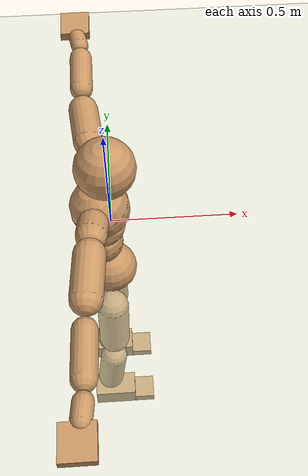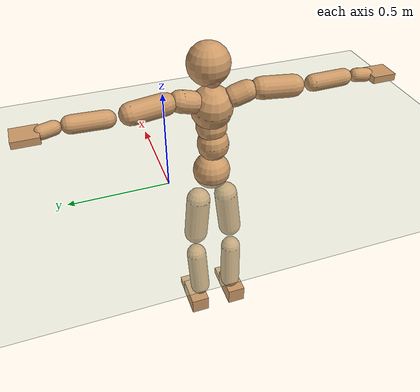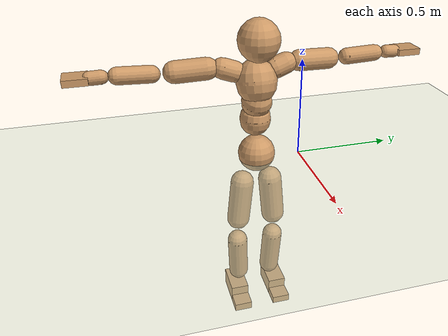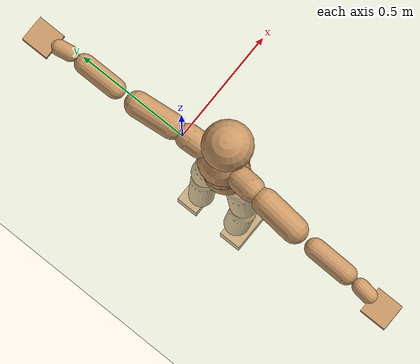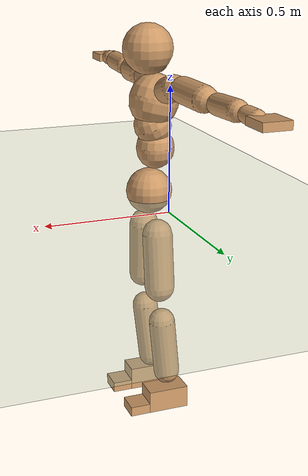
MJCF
<mujoco model="humanoid">
  <compiler coordinate="local"/>
  <default>
    <joint damping="0.0" armature="0.01" stiffness="0.0" limited="true"/>
    <geom conaffinity="1" condim="3" contype="7" margin="0.001" rgba="0.8 0.6 .4 1"/>
  </default>
  <asset>
    <texture type="skybox" builtin="gradient" rgb1=".4 .5 .6" rgb2="0 0 0" width="100" height="100"/>
    <texture builtin="flat" height="1278" mark="cross" markrgb="1 1 1" name="texgeom" random="0.01" rgb1="0.8 0.6 0.4" rgb2="0.8 0.6 0.4" type="cube" width="127"/>
    <texture builtin="checker" height="100" name="texplane" rgb1="0 0 0" rgb2="0.8 0.8 0.8" type="2d" width="100"/>
    <material name="MatPlane" reflectance="0.5" shininess="1" specular="1" texrepeat="60 60" texture="texplane"/>
    <material name="geom" texture="texgeom" texuniform="true"/>
  </asset>
  <worldbody>
    <light cutoff="100" diffuse="1 1 1" dir="-0 0 -1.3" directional="true" exponent="1" pos="0 0 1.3" specular=".1 .1 .1"/>
    <geom conaffinity="1" condim="3" name="floor" pos="0 0 0" rgba="0.8 0.9 0.8 1" size="100 100 .2" type="plane" material="MatPlane"/>
    <body name="Pelvis" pos="-0.0019 -0.2253 0.0285">
      <freejoint name="Pelvis"/>
      <geom type="sphere" contype="1" conaffinity="1" density="4629.6296296296305" size="0.0948" pos="0.0000 0.0000 0.0000" name="Pelvis"/>
      <body name="L_Hip" pos="-0.0067 0.0696 -0.092">
        <joint name="L_Hip_x" type="hinge" pos="0 0 0" axis="1 0 0" user="250 2.5 1 500 10 2" armature="0.01" range="-90.0000 90.0000" damping="0" stiffness="0"/>
        <joint name="L_Hip_y" type="hinge" pos="0 0 0" axis="0 1 0" user="250 2.5 1 500 10 2" armature="0.01" range="-90.0000 90.0000" damping="0" stiffness="0"/>
        <joint name="L_Hip_z" type="hinge" pos="0 0 0" axis="0 0 1" user="250 2.5 1 500 10 2" armature="0.01" range="-90.0000 90.0000" damping="0" stiffness="0"/>
        <geom type="capsule" contype="1" conaffinity="1" density="2040.816327" fromto="-0.0009 0.0070 -0.0757 -0.0035 0.0279 -0.3028" size="0.0618" name="L_Hip"/>
        <body name="L_Knee" pos="-0.0043 0.0349 -0.3785">
          <joint name="L_Knee_x" type="hinge" pos="0 0 0" axis="1 0 0" user="250 2.5 1 500 10 2" armature="0.01" range="-5.6250 5.6250" damping="0" stiffness="0"/>
          <joint name="L_Knee_y" type="hinge" pos="0 0 0" axis="0 1 0" user="250 2.5 1 500 10 2" armature="0.01" range="0.0000 180.0000" damping="0" stiffness="0"/>
          <joint name="L_Knee_z" type="hinge" pos="0 0 0" axis="0 0 1" user="250 2.5 1 500 10 2" armature="0.01" range="-5.6250 5.6250" damping="0" stiffness="0"/>
          <geom type="capsule" contype="1" conaffinity="1" density="1234.567901" fromto="-0.0088 -0.0028 -0.0804 -0.0352 -0.0111 -0.3218" size="0.0544" name="L_Knee"/>
          <body name="L_Ankle" pos="-0.044 -0.0139 -0.4022">
            <joint name="L_Ankle_x" type="hinge" pos="0 0 0" axis="1 0 0" user="150 2.5 1 500 10 2" armature="0.01" range="-45.0000 45.0000" damping="0" stiffness="0"/>
            <joint name="L_Ankle_y" type="hinge" pos="0 0 0" axis="0 1 0" user="150 2.5 1 500 10 2" armature="0.01" range="-90.0000 90.0000" damping="0" stiffness="0"/>
            <joint name="L_Ankle_z" type="hinge" pos="0 0 0" axis="0 0 1" user="150 2.5 1 500 10 2" armature="0.01" range="-45.0000 45.0000" damping="0" stiffness="0"/>
            <geom type="box" density="449.066911" pos="0.0244 0.0237 -0.0240" size="0.0857 0.0488 0.0468" quat="1.0000 0.0000 0.0000 0.0000" name="L_Ankle"/>
            <body name="L_Toe" pos="0.1204 0.0268 -0.0563">
              <joint name="L_Toe_x" type="hinge" pos="0 0 0" axis="1 0 0" user="150 1 1 500 1 1" armature="0.01" range="-180.0000 180.0000" damping="0" stiffness="0"/>
              <joint name="L_Toe_y" type="hinge" pos="0 0 0" axis="0 1 0" user="150 1 1 500 1 1" armature="0.01" range="-180.0000 180.0000" damping="0" stiffness="0"/>
              <joint name="L_Toe_z" type="hinge" pos="0 0 0" axis="0 0 1" user="150 1 1 500 1 1" armature="0.01" range="-180.0000 180.0000" damping="0" stiffness="0"/>
              <geom type="box" density="424.15414" pos="0.0251 -0.0031 0.0055" size="0.05 0.0481 0.0202" quat="1.0000 0.0000 0.0000 0.0000" name="L_Toe"/>
            </body>
          </body>
        </body>
      </body>
      <body name="R_Hip" pos="-0.0042 -0.0678 -0.0911">
        <joint name="R_Hip_x" type="hinge" pos="0 0 0" axis="1 0 0" user="250 2.5 1 500 10 2" armature="0.01" range="-90.0000 90.0000" damping="0" stiffness="0"/>
        <joint name="R_Hip_y" type="hinge" pos="0 0 0" axis="0 1 0" user="250 2.5 1 500 10 2" armature="0.01" range="-90.0000 90.0000" damping="0" stiffness="0"/>
        <joint name="R_Hip_z" type="hinge" pos="0 0 0" axis="0 0 1" user="250 2.5 1 500 10 2" armature="0.01" range="-90.0000 90.0000" damping="0" stiffness="0"/>
        <geom type="capsule" contype="1" conaffinity="1" density="2040.816327" fromto="-0.0018 -0.0078 -0.0772 -0.0071 -0.0311 -0.3088" size="0.0608" name="R_Hip"/>
        <body name="R_Knee" pos="-0.0089 -0.0388 -0.3861">
          <joint name="R_Knee_x" type="hinge" pos="0 0 0" axis="1 0 0" user="250 2.5 1 500 10 2" armature="0.01" range="-5.6250 5.6250" damping="0" stiffness="0"/>
          <joint name="R_Knee_y" type="hinge" pos="0 0 0" axis="0 1 0" user="250 2.5 1 500 10 2" armature="0.01" range="0.0000 180.0000" damping="0" stiffness="0"/>
          <joint name="R_Knee_z" type="hinge" pos="0 0 0" axis="0 0 1" user="250 2.5 1 500 10 2" armature="0.01" range="-5.6250 5.6250" damping="0" stiffness="0"/>
          <geom type="capsule" contype="1" conaffinity="1" density="1234.567901" fromto="-0.0085 0.0032 -0.0806 -0.0341 0.0129 -0.3222" size="0.0545" name="R_Knee"/>
          <body name="R_Ankle" pos="-0.0426 0.0161 -0.4028">
            <joint name="R_Ankle_x" type="hinge" pos="0 0 0" axis="1 0 0" user="150 1 1 500 10 2" armature="0.01" range="-45.0000 45.0000" damping="0" stiffness="0"/>
            <joint name="R_Ankle_y" type="hinge" pos="0 0 0" axis="0 1 0" user="150 1 1 500 10 2" armature="0.01" range="-90.0000 90.0000" damping="0" stiffness="0"/>
            <joint name="R_Ankle_z" type="hinge" pos="0 0 0" axis="0 0 1" user="150 1 1 500 10 2" armature="0.01" range="-45.0000 45.0000" damping="0" stiffness="0"/>
            <geom type="box" density="435.148305" pos="0.0259 -0.0217 -0.0176" size="0.0873 0.0487 0.0483" quat="1.0000 0.0000 0.0000 0.0000" name="R_Ankle"/>
            <body name="R_Toe" pos="0.1245 -0.026 -0.0486">
              <joint name="R_Toe_x" type="hinge" pos="0 0 0" axis="1 0 0" user="150 1 1 500 1 1" armature="0.01" range="-180.0000 180.0000" damping="0" stiffness="0"/>
              <joint name="R_Toe_y" type="hinge" pos="0 0 0" axis="0 1 0" user="150 1 1 500 1 1" armature="0.01" range="-180.0000 180.0000" damping="0" stiffness="0"/>
              <joint name="R_Toe_z" type="hinge" pos="0 0 0" axis="0 0 1" user="150 1 1 500 1 1" armature="0.01" range="-180.0000 180.0000" damping="0" stiffness="0"/>
              <geom type="box" density="409.981889" pos="0.0228 0.0043 0.0045" size="0.0497 0.0483 0.0217" quat="1.0000 0.0000 0.0000 0.0000" name="R_Toe"/>
            </body>
          </body>
        </body>
      </body>
      <body name="Torso" pos="-0.0274 -0.0025 0.1101">
        <joint name="Torso_x" type="hinge" pos="0 0 0" axis="1 0 0" user="500 5 1 500 10 2" armature="0.01" range="-60.0000 60.0000" damping="0" stiffness="0"/>
        <joint name="Torso_y" type="hinge" pos="0 0 0" axis="0 1 0" user="500 5 1 500 10 2" armature="0.01" range="-60.0000 60.0000" damping="0" stiffness="0"/>
        <joint name="Torso_z" type="hinge" pos="0 0 0" axis="0 0 1" user="500 5 1 500 10 2" armature="0.01" range="-60.0000 60.0000" damping="0" stiffness="0"/>
        <geom type="capsule" contype="1" conaffinity="1" density="2040.816327" fromto="0.0006 0.0026 0.0614 0.0008 0.0031 0.0751" size="0.0778" name="Torso"/>
        <body name="Spine" pos="0.0014 0.0057 0.1365">
          <joint name="Spine_x" type="hinge" pos="0 0 0" axis="1 0 0" user="500 5 1 500 10 2" armature="0.01" range="-60.0000 60.0000" damping="0" stiffness="0"/>
          <joint name="Spine_y" type="hinge" pos="0 0 0" axis="0 1 0" user="500 5 1 500 10 2" armature="0.01" range="-60.0000 60.0000" damping="0" stiffness="0"/>
          <joint name="Spine_z" type="hinge" pos="0 0 0" axis="0 0 1" user="500 5 1 500 10 2" armature="0.01" range="-60.0000 60.0000" damping="0" stiffness="0"/>
          <geom type="capsule" contype="1" conaffinity="1" density="2040.816327" fromto="0.0114 0.0006 0.0241 0.0139 0.0008 0.0295" size="0.0762" name="Spine"/>
          <body name="Chest" pos="0.0253 0.0014 0.0535">
            <joint name="Chest_x" type="hinge" pos="0 0 0" axis="1 0 0" user="500 5 1 500 10 2" armature="0.01" range="-60.0000 60.0000" damping="0" stiffness="0"/>
            <joint name="Chest_y" type="hinge" pos="0 0 0" axis="0 1 0" user="500 5 1 500 10 2" armature="0.01" range="-60.0000 60.0000" damping="0" stiffness="0"/>
            <joint name="Chest_z" type="hinge" pos="0 0 0" axis="0 0 1" user="500 5 1 500 10 2" armature="0.01" range="-60.0000 60.0000" damping="0" stiffness="0"/>
            <geom type="capsule" contype="1" conaffinity="1" density="2040.816327" fromto="-0.0172 -0.0009 0.0687 -0.0210 -0.0011 0.0840" size="0.101" name="Chest"/>
            <body name="Neck" pos="-0.0422 -0.0029 0.2156">
              <joint name="Neck_x" type="hinge" pos="0 0 0" axis="1 0 0" user="150 1 1 250 50 4" armature="0.01" range="-5.6250 5.6250" damping="0" stiffness="0"/>
              <joint name="Neck_y" type="hinge" pos="0 0 0" axis="0 1 0" user="150 1 1 250 50 4" armature="0.01" range="-90.0000 90.0000" damping="0" stiffness="0"/>
              <joint name="Neck_z" type="hinge" pos="0 0 0" axis="0 0 1" user="150 1 1 250 50 4" armature="0.01" range="-90.0000 90.0000" damping="0" stiffness="0"/>
              <geom type="capsule" contype="1" conaffinity="1" density="1000" fromto="0.0103 0.0011 0.0131 0.0414 0.0043 0.0524" size="0.044" name="Neck"/>
              <body name="Head" pos="0.0517 0.0053 0.0655">
                <joint name="Head_x" type="hinge" pos="0 0 0" axis="1 0 0" user="150 1 1 250 50 4" armature="0.01" range="-5.6250 5.6250" damping="0" stiffness="0"/>
                <joint name="Head_y" type="hinge" pos="0 0 0" axis="0 1 0" user="150 1 1 250 50 4" armature="0.01" range="-90.0000 90.0000" damping="0" stiffness="0"/>
                <joint name="Head_z" type="hinge" pos="0 0 0" axis="0 0 1" user="150 1 1 250 50 4" armature="0.01" range="-90.0000 90.0000" damping="0" stiffness="0"/>
                <geom type="sphere" contype="1" conaffinity="1" density="1000" size="0.1016" pos="0.0000 0.0000 0.0000" name="Head"/>
              </body>
            </body>
            <body name="L_Thorax" pos="-0.0339 0.0795 0.1228">
              <joint name="L_Thorax_x" type="hinge" pos="0 0 0" axis="1 0 0" user="200 2 1 500 50 4" armature="0.01" range="-5.6250 5.6250" damping="0" stiffness="0"/>
              <joint name="L_Thorax_y" type="hinge" pos="0 0 0" axis="0 1 0" user="200 2 1 500 50 4" armature="0.01" range="-5.6250 5.6250" damping="0" stiffness="0"/>
              <joint name="L_Thorax_z" type="hinge" pos="0 0 0" axis="0 0 1" user="200 2 1 500 50 4" armature="0.01" range="-5.6250 5.6250" damping="0" stiffness="0"/>
              <geom type="capsule" contype="1" conaffinity="1" density="1000" fromto="-0.0018 0.0184 0.0061 -0.0073 0.0735 0.0244" size="0.0526" name="L_Thorax"/>
              <body name="L_Shoulder" pos="-0.0091 0.0918 0.0305">
                <joint name="L_Shoulder_x" type="hinge" pos="0 0 0" axis="1 0 0" user="200 2 1 500 50 4" armature="0.01" range="-720.0000 720.0000" damping="0" stiffness="0"/>
                <joint name="L_Shoulder_y" type="hinge" pos="0 0 0" axis="0 1 0" user="200 2 1 500 50 4" armature="0.01" range="-720.0000 720.0000" damping="0" stiffness="0"/>
                <joint name="L_Shoulder_z" type="hinge" pos="0 0 0" axis="0 0 1" user="200 2 1 500 50 4" armature="0.01" range="-720.0000 720.0000" damping="0" stiffness="0"/>
                <geom type="capsule" contype="1" conaffinity="1" density="1000" fromto="-0.0055 0.0524 -0.0026 -0.0221 0.2096 -0.0105" size="0.0522" name="L_Shoulder"/>
                <body name="L_Elbow" pos="-0.0276 0.262 -0.0131">
                  <joint name="L_Elbow_x" type="hinge" pos="0 0 0" axis="1 0 0" user="150 1 1 150 10 2" armature="0.01" range="-5.6250 5.6250" damping="0" stiffness="0"/>
                  <joint name="L_Elbow_y" type="hinge" pos="0 0 0" axis="0 1 0" user="150 1 1 150 10 2" armature="0.01" range="-5.6250 5.6250" damping="0" stiffness="0"/>
                  <joint name="L_Elbow_z" type="hinge" pos="0 0 0" axis="0 0 1" user="150 1 1 150 10 2" armature="0.01" range="-180.0000 0.0000" damping="0" stiffness="0"/>
                  <geom type="capsule" contype="1" conaffinity="1" density="1000" fromto="-0.0003 0.0504 0.0018 -0.0010 0.2015 0.0073" size="0.0408" name="L_Elbow"/>
                  <body name="L_Wrist" pos="-0.0013 0.2518 0.0091">
                    <joint name="L_Wrist_x" type="hinge" pos="0 0 0" axis="1 0 0" user="100 1 1 150 1 1" armature="0.01" range="-180.0000 180.0000" damping="0" stiffness="0"/>
                    <joint name="L_Wrist_y" type="hinge" pos="0 0 0" axis="0 1 0" user="100 1 1 150 1 1" armature="0.01" range="-180.0000 180.0000" damping="0" stiffness="0"/>
                    <joint name="L_Wrist_z" type="hinge" pos="0 0 0" axis="0 0 1" user="100 1 1 150 1 1" armature="0.01" range="-180.0000 180.0000" damping="0" stiffness="0"/>
                    <geom type="capsule" contype="1" conaffinity="1" density="1000" fromto="-0.0030 0.0170 -0.0016 -0.0122 0.0679 -0.0064" size="0.0321" name="L_Wrist"/>
                    <body name="L_Hand" pos="-0.0152 0.0849 -0.008">
                      <joint name="L_Hand_x" type="hinge" pos="0 0 0" axis="1 0 0" user="50 1 1 150 1 1" armature="0.01" range="-180.0000 180.0000" damping="0" stiffness="0"/>
                      <joint name="L_Hand_y" type="hinge" pos="0 0 0" axis="0 1 0" user="50 1 1 150 1 1" armature="0.01" range="-180.0000 180.0000" damping="0" stiffness="0"/>
                      <joint name="L_Hand_z" type="hinge" pos="0 0 0" axis="0 0 1" user="50 1 1 150 1 1" armature="0.01" range="-180.0000 180.0000" damping="0" stiffness="0"/>
                      <geom type="box" density="401.53505" pos="-0.0057 0.0498 0.0010" size="0.0543 0.0589 0.016" quat="1.0000 0.0000 0.0000 0.0000" name="L_Hand"/>
                    </body>
                  </body>
                </body>
              </body>
            </body>
            <body name="R_Thorax" pos="-0.0384 -0.0826 0.1197">
              <joint name="R_Thorax_x" type="hinge" pos="0 0 0" axis="1 0 0" user="200 2 1 150 10 2" armature="0.01" range="-5.6250 5.6250" damping="0" stiffness="0"/>
              <joint name="R_Thorax_y" type="hinge" pos="0 0 0" axis="0 1 0" user="200 2 1 150 10 2" armature="0.01" range="-5.6250 5.6250" damping="0" stiffness="0"/>
              <joint name="R_Thorax_z" type="hinge" pos="0 0 0" axis="0 0 1" user="200 2 1 150 10 2" armature="0.01" range="-5.6250 5.6250" damping="0" stiffness="0"/>
              <geom type="capsule" contype="1" conaffinity="1" density="1000" fromto="-0.0018 -0.0194 0.0065 -0.0072 -0.0776 0.0262" size="0.0516" name="R_Thorax"/>
              <body name="R_Shoulder" pos="-0.009 -0.097 0.0327">
                <joint name="R_Shoulder_x" type="hinge" pos="0 0 0" axis="1 0 0" user="200 2 1 250 10 2" armature="0.01" range="-720.0000 720.0000" damping="0" stiffness="0"/>
                <joint name="R_Shoulder_y" type="hinge" pos="0 0 0" axis="0 1 0" user="200 2 1 250 10 2" armature="0.01" range="-720.0000 720.0000" damping="0" stiffness="0"/>
                <joint name="R_Shoulder_z" type="hinge" pos="0 0 0" axis="0 0 1" user="200 2 1 250 10 2" armature="0.01" range="-720.0000 720.0000" damping="0" stiffness="0"/>
                <geom type="capsule" contype="1" conaffinity="1" density="1000" fromto="-0.0043 -0.0512 -0.0027 -0.0174 -0.2049 -0.0109" size="0.0536" name="R_Shoulder"/>
                <body name="R_Elbow" pos="-0.0217 -0.2561 -0.0136">
                  <joint name="R_Elbow_x" type="hinge" pos="0 0 0" axis="1 0 0" user="150 1 1 150 10 2" armature="0.01" range="-5.6250 5.6250" damping="0" stiffness="0"/>
                  <joint name="R_Elbow_y" type="hinge" pos="0 0 0" axis="0 1 0" user="150 1 1 150 10 2" armature="0.01" range="-5.6250 5.6250" damping="0" stiffness="0"/>
                  <joint name="R_Elbow_z" type="hinge" pos="0 0 0" axis="0 0 1" user="150 1 1 150 10 2" armature="0.01" range="0.0000 180.0000" damping="0" stiffness="0"/>
                  <geom type="capsule" contype="1" conaffinity="1" density="1000" fromto="-0.0012 -0.0516 0.0016 -0.0046 -0.2063 0.0062" size="0.0412" name="R_Elbow"/>
                  <body name="R_Wrist" pos="-0.0058 -0.2578 0.0078">
                    <joint name="R_Wrist_x" type="hinge" pos="0 0 0" axis="1 0 0" user="100 1 1 150 1 1" armature="0.01" range="-180.0000 180.0000" damping="0" stiffness="0"/>
                    <joint name="R_Wrist_y" type="hinge" pos="0 0 0" axis="0 1 0" user="100 1 1 150 1 1" armature="0.01" range="-180.0000 180.0000" damping="0" stiffness="0"/>
                    <joint name="R_Wrist_z" type="hinge" pos="0 0 0" axis="0 0 1" user="100 1 1 150 1 1" armature="0.01" range="-180.0000 180.0000" damping="0" stiffness="0"/>
                    <geom type="capsule" contype="1" conaffinity="1" density="1000" fromto="-0.0021 -0.0171 -0.0012 -0.0083 -0.0684 -0.0048" size="0.0329" name="R_Wrist"/>
                    <body name="R_Hand" pos="-0.0104 -0.0855 -0.006">
                      <joint name="R_Hand_x" type="hinge" pos="0 0 0" axis="1 0 0" user="50 1 1 150 1 1" armature="0.01" range="-180.0000 180.0000" damping="0" stiffness="0"/>
                      <joint name="R_Hand_y" type="hinge" pos="0 0 0" axis="0 1 0" user="50 1 1 150 1 1" armature="0.01" range="-180.0000 180.0000" damping="0" stiffness="0"/>
                      <joint name="R_Hand_z" type="hinge" pos="0 0 0" axis="0 0 1" user="50 1 1 150 1 1" armature="0.01" range="-180.0000 180.0000" damping="0" stiffness="0"/>
                      <geom type="box" density="404.547781" pos="-0.0080 -0.0466 -0.0009" size="0.0551 0.0574 0.0165" quat="1.0000 0.0000 0.0000 0.0000" name="R_Hand"/>
                    </body>
                  </body>
                </body>
              </body>
            </body>
          </body>
        </body>
      </body>
    </body>
  </worldbody>
  <actuator>
    <motor name="L_Hip_x" joint="L_Hip_x" gear="1"/>
    <motor name="L_Hip_y" joint="L_Hip_y" gear="1"/>
    <motor name="L_Hip_z" joint="L_Hip_z" gear="1"/>
    <motor name="L_Knee_x" joint="L_Knee_x" gear="1"/>
    <motor name="L_Knee_y" joint="L_Knee_y" gear="1"/>
    <motor name="L_Knee_z" joint="L_Knee_z" gear="1"/>
    <motor name="L_Ankle_x" joint="L_Ankle_x" gear="1"/>
    <motor name="L_Ankle_y" joint="L_Ankle_y" gear="1"/>
    <motor name="L_Ankle_z" joint="L_Ankle_z" gear="1"/>
    <motor name="L_Toe_x" joint="L_Toe_x" gear="1"/>
    <motor name="L_Toe_y" joint="L_Toe_y" gear="1"/>
    <motor name="L_Toe_z" joint="L_Toe_z" gear="1"/>
    <motor name="R_Hip_x" joint="R_Hip_x" gear="1"/>
    <motor name="R_Hip_y" joint="R_Hip_y" gear="1"/>
    <motor name="R_Hip_z" joint="R_Hip_z" gear="1"/>
    <motor name="R_Knee_x" joint="R_Knee_x" gear="1"/>
    <motor name="R_Knee_y" joint="R_Knee_y" gear="1"/>
    <motor name="R_Knee_z" joint="R_Knee_z" gear="1"/>
    <motor name="R_Ankle_x" joint="R_Ankle_x" gear="1"/>
    <motor name="R_Ankle_y" joint="R_Ankle_y" gear="1"/>
    <motor name="R_Ankle_z" joint="R_Ankle_z" gear="1"/>
    <motor name="R_Toe_x" joint="R_Toe_x" gear="1"/>
    <motor name="R_Toe_y" joint="R_Toe_y" gear="1"/>
    <motor name="R_Toe_z" joint="R_Toe_z" gear="1"/>
    <motor name="Torso_x" joint="Torso_x" gear="1"/>
    <motor name="Torso_y" joint="Torso_y" gear="1"/>
    <motor name="Torso_z" joint="Torso_z" gear="1"/>
    <motor name="Spine_x" joint="Spine_x" gear="1"/>
    <motor name="Spine_y" joint="Spine_y" gear="1"/>
    <motor name="Spine_z" joint="Spine_z" gear="1"/>
    <motor name="Chest_x" joint="Chest_x" gear="1"/>
    <motor name="Chest_y" joint="Chest_y" gear="1"/>
    <motor name="Chest_z" joint="Chest_z" gear="1"/>
    <motor name="Neck_x" joint="Neck_x" gear="1"/>
    <motor name="Neck_y" joint="Neck_y" gear="1"/>
    <motor name="Neck_z" joint="Neck_z" gear="1"/>
    <motor name="Head_x" joint="Head_x" gear="1"/>
    <motor name="Head_y" joint="Head_y" gear="1"/>
    <motor name="Head_z" joint="Head_z" gear="1"/>
    <motor name="L_Thorax_x" joint="L_Thorax_x" gear="1"/>
    <motor name="L_Thorax_y" joint="L_Thorax_y" gear="1"/>
    <motor name="L_Thorax_z" joint="L_Thorax_z" gear="1"/>
    <motor name="L_Shoulder_x" joint="L_Shoulder_x" gear="1"/>
    <motor name="L_Shoulder_y" joint="L_Shoulder_y" gear="1"/>
    <motor name="L_Shoulder_z" joint="L_Shoulder_z" gear="1"/>
    <motor name="L_Elbow_x" joint="L_Elbow_x" gear="1"/>
    <motor name="L_Elbow_y" joint="L_Elbow_y" gear="1"/>
    <motor name="L_Elbow_z" joint="L_Elbow_z" gear="1"/>
    <motor name="L_Wrist_x" joint="L_Wrist_x" gear="1"/>
    <motor name="L_Wrist_y" joint="L_Wrist_y" gear="1"/>
    <motor name="L_Wrist_z" joint="L_Wrist_z" gear="1"/>
    <motor name="L_Hand_x" joint="L_Hand_x" gear="1"/>
    <motor name="L_Hand_y" joint="L_Hand_y" gear="1"/>
    <motor name="L_Hand_z" joint="L_Hand_z" gear="1"/>
    <motor name="R_Thorax_x" joint="R_Thorax_x" gear="1"/>
    <motor name="R_Thorax_y" joint="R_Thorax_y" gear="1"/>
    <motor name="R_Thorax_z" joint="R_Thorax_z" gear="1"/>
    <motor name="R_Shoulder_x" joint="R_Shoulder_x" gear="1"/>
    <motor name="R_Shoulder_y" joint="R_Shoulder_y" gear="1"/>
    <motor name="R_Shoulder_z" joint="R_Shoulder_z" gear="1"/>
    <motor name="R_Elbow_x" joint="R_Elbow_x" gear="1"/>
    <motor name="R_Elbow_y" joint="R_Elbow_y" gear="1"/>
    <motor name="R_Elbow_z" joint="R_Elbow_z" gear="1"/>
    <motor name="R_Wrist_x" joint="R_Wrist_x" gear="1"/>
    <motor name="R_Wrist_y" joint="R_Wrist_y" gear="1"/>
    <motor name="R_Wrist_z" joint="R_Wrist_z" gear="1"/>
    <motor name="R_Hand_x" joint="R_Hand_x" gear="1"/>
    <motor name="R_Hand_y" joint="R_Hand_y" gear="1"/>
    <motor name="R_Hand_z" joint="R_Hand_z" gear="1"/>
  </actuator>
  <contact>
    <exclude body1="Torso" body2="Chest"/>
    <exclude body1="Head" body2="Chest"/>
    <exclude body1="R_Knee" body2="R_Toe"/>
    <exclude body1="R_Knee" body2="L_Ankle"/>
    <exclude body1="R_Knee" body2="L_Toe"/>
    <exclude body1="L_Knee" body2="L_Toe"/>
    <exclude body1="L_Knee" body2="R_Ankle"/>
    <exclude body1="L_Knee" body2="R_Toe"/>
    <exclude body1="L_Shoulder" body2="Chest"/>
    <exclude body1="R_Shoulder" body2="Chest"/>
  </contact>
  <sensor/>
  <size njmax="700" nconmax="700"/>
</mujoco>
